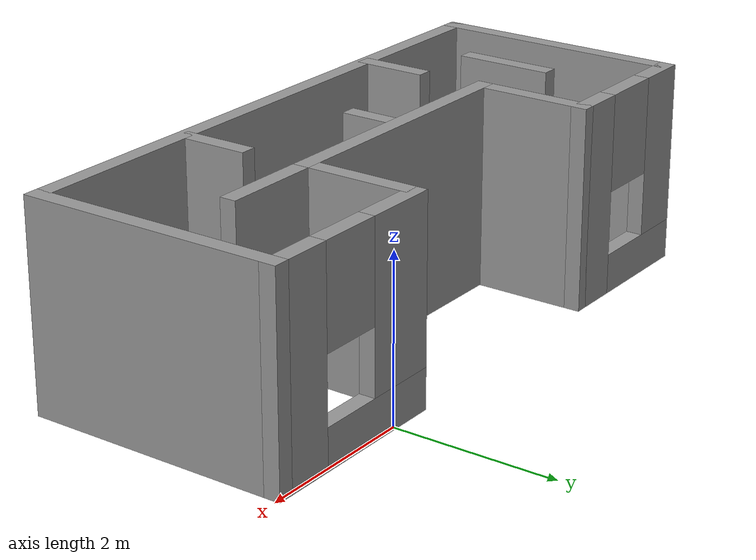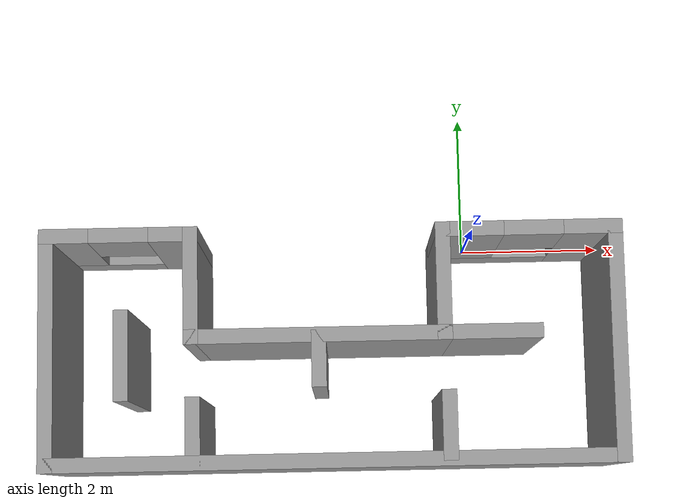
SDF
<?xml version='1.0'?>
<sdf version='1.4'>
  <model name='maze1'>
    <link name='Wall_10'>
      <collision name='Wall_10_Collision'>
        <geometry>
          <box>
            <size>3.24327 0.2 2.5</size>
          </box>
        </geometry>
        <pose>0 0 1.25 0 -0 0</pose>
      </collision>
      <visual name='Wall_10_Visual'>
        <pose>0 0 1.25 0 -0 0</pose>
        <geometry>
          <box>
            <size>3.24327 0.2 2.5</size>
          </box>
        </geometry>
        <material>
          <script>
            <uri>file://media/materials/scripts/gazebo.material</uri>
            <name>Gazebo/Grey</name>
          </script>
        </material>
      </visual>
      <velocity_decay>
        <linear>0</linear>
        <angular>0</angular>
      </velocity_decay>
      <pose>-5.73365 -1.57745 0 0 0 -1.5708</pose>
    </link>
    <link name='Wall_12'>
      <collision name='Wall_12_Collision'>
        <geometry>
          <box>
            <size>0.759682 0.2 2.5</size>
          </box>
        </geometry>
        <pose>0 0 1.25 0 -0 0</pose>
      </collision>
      <visual name='Wall_12_Visual'>
        <pose>0 0 1.25 0 -0 0</pose>
        <geometry>
          <box>
            <size>0.759682 0.2 2.5</size>
          </box>
        </geometry>
        <material>
          <script>
            <uri>file://media/materials/scripts/gazebo.material</uri>
            <name>Gazebo/Grey</name>
          </script>
        </material>
      </visual>
      <velocity_decay>
        <linear>0</linear>
        <angular>0</angular>
      </velocity_decay>
      <pose>-2.1132 -1.75235 0 0 0 -1.5708</pose>
    </link>
    <link name='Wall_14'>
      <collision name='Wall_14_Collision'>
        <geometry>
          <box>
            <size>0.917093 0.2 2.5</size>
          </box>
        </geometry>
        <pose>0 0 1.25 0 -0 0</pose>
      </collision>
      <visual name='Wall_14_Visual'>
        <pose>0 0 1.25 0 -0 0</pose>
        <geometry>
          <box>
            <size>0.917093 0.2 2.5</size>
          </box>
        </geometry>
        <material>
          <script>
            <uri>file://media/materials/scripts/gazebo.material</uri>
            <name>Gazebo/Grey</name>
          </script>
        </material>
      </visual>
      <velocity_decay>
        <linear>0</linear>
        <angular>0</angular>
      </velocity_decay>
      <pose>-3.79225 -2.68807 0 0 -0 1.5708</pose>
    </link>
    <link name='Wall_16'>
      <collision name='Wall_16_Collision'>
        <geometry>
          <box>
            <size>0.934583 0.2 2.5</size>
          </box>
        </geometry>
        <pose>0 0 1.25 0 -0 0</pose>
      </collision>
      <visual name='Wall_16_Visual'>
        <pose>0 0 1.25 0 -0 0</pose>
        <geometry>
          <box>
            <size>0.934583 0.2 2.5</size>
          </box>
        </geometry>
        <material>
          <script>
            <uri>file://media/materials/scripts/gazebo.material</uri>
            <name>Gazebo/Grey</name>
          </script>
        </material>
      </visual>
      <velocity_decay>
        <linear>0</linear>
        <angular>0</angular>
      </velocity_decay>
      <pose>-0.399176 -2.66183 0 0 -0 1.5708</pose>
    </link>
    <link name='Wall_18'>
      <collision name='Wall_18_Collision'>
        <geometry>
          <box>
            <size>1.40681 0.2 2.5</size>
          </box>
        </geometry>
        <pose>0 0 1.25 0 -0 0</pose>
      </collision>
      <visual name='Wall_18_Visual'>
        <pose>0 0 1.25 0 -0 0</pose>
        <geometry>
          <box>
            <size>1.40681 0.2 2.5</size>
          </box>
        </geometry>
        <material>
          <script>
            <uri>file://media/materials/scripts/gazebo.material</uri>
            <name>Gazebo/Grey</name>
          </script>
        </material>
      </visual>
      <velocity_decay>
        <linear>0</linear>
        <angular>0</angular>
      </velocity_decay>
      <pose>0.169251 -1.43753 0 0 -0 0</pose>
    </link>
    <link name='Wall_20'>
      <collision name='Wall_20_Collision'>
        <geometry>
          <box>
            <size>1.21442 0.2 2.5</size>
          </box>
        </geometry>
        <pose>0 0 1.25 0 -0 0</pose>
      </collision>
      <visual name='Wall_20_Visual'>
        <pose>0 0 1.25 0 -0 0</pose>
        <geometry>
          <box>
            <size>1.21442 0.2 2.5</size>
          </box>
        </geometry>
        <material>
          <script>
            <uri>file://media/materials/scripts/gazebo.material</uri>
            <name>Gazebo/Grey</name>
          </script>
        </material>
      </visual>
      <velocity_decay>
        <linear>0</linear>
        <angular>0</angular>
      </velocity_decay>
      <pose>-4.73671 -1.6649 0 0 0 -1.5708</pose>
    </link>
    <link name='Wall_3'>
      <collision name='Wall_3_Collision'>
        <geometry>
          <box>
            <size>7.80818 0.2 2.5</size>
          </box>
        </geometry>
        <pose>0 0 1.25 0 -0 0</pose>
      </collision>
      <visual name='Wall_3_Visual'>
        <pose>0 0 1.25 0 -0 0</pose>
        <geometry>
          <box>
            <size>7.80818 0.2 2.5</size>
          </box>
        </geometry>
        <material>
          <script>
            <uri>file://media/materials/scripts/gazebo.material</uri>
            <name>Gazebo/Grey</name>
          </script>
        </material>
      </visual>
      <velocity_decay>
        <linear>0</linear>
        <angular>0</angular>
      </velocity_decay>
      <pose>-1.92956 -3.09909 0 0 -0 0</pose>
    </link>
    <link name='Wall_4'>
      <collision name='Wall_4_Collision'>
        <geometry>
          <box>
            <size>3.24327 0.2 2.5</size>
          </box>
        </geometry>
        <pose>0 0 1.25 0 -0 0</pose>
      </collision>
      <visual name='Wall_4_Visual'>
        <pose>0 0 1.25 0 -0 0</pose>
        <geometry>
          <box>
            <size>3.24327 0.2 2.5</size>
          </box>
        </geometry>
        <material>
          <script>
            <uri>file://media/materials/scripts/gazebo.material</uri>
            <name>Gazebo/Grey</name>
          </script>
        </material>
      </visual>
      <velocity_decay>
        <linear>0</linear>
        <angular>0</angular>
      </velocity_decay>
      <pose>1.87453 -1.57745 0 0 -0 1.5708</pose>
    </link>
    <link name='Wall_5'>
      <pose>0.720188 -0.055814 0 0 -0 3.14159</pose>
      <visual name='Wall_5_Visual_0'>
        <pose>-0.862152 0 1.25 0 -0 0</pose>
        <geometry>
          <box>
            <size>0.784384 0.2 2.5</size>
          </box>
        </geometry>
        <material>
          <script>
            <uri>file://media/materials/scripts/gazebo.material</uri>
            <name>Gazebo/Grey</name>
          </script>
        </material>
      </visual>
      <collision name='Wall_5_Collision_0'>
        <geometry>
          <box>
            <size>0.784384 0.2 2.5</size>
          </box>
        </geometry>
        <pose>-0.862152 0 1.25 0 -0 0</pose>
      </collision>
      <visual name='Wall_5_Visual_1'>
        <pose>0.392192 0 0.25 0 -0 0</pose>
        <geometry>
          <box>
            <size>1.7243 0.2 0.5</size>
          </box>
        </geometry>
        <material>
          <script>
            <uri>file://media/materials/scripts/gazebo.material</uri>
            <name>Gazebo/Grey</name>
          </script>
        </material>
      </visual>
      <collision name='Wall_5_Collision_1'>
        <geometry>
          <box>
            <size>1.7243 0.2 0.5</size>
          </box>
        </geometry>
        <pose>0.392192 0 0.25 0 -0 0</pose>
      </collision>
      <visual name='Wall_5_Visual_2'>
        <pose>0.792192 0 1.5 0 -0 0</pose>
        <geometry>
          <box>
            <size>0.924304 0.2 2</size>
          </box>
        </geometry>
        <material>
          <script>
            <uri>file://media/materials/scripts/gazebo.material</uri>
            <name>Gazebo/Grey</name>
          </script>
        </material>
      </visual>
      <collision name='Wall_5_Collision_2'>
        <geometry>
          <box>
            <size>0.924304 0.2 2</size>
          </box>
        </geometry>
        <pose>0.792192 0 1.5 0 -0 0</pose>
      </collision>
      <visual name='Wall_5_Visual_3'>
        <pose>-0.06996 0 1.9 0 -0 0</pose>
        <geometry>
          <box>
            <size>0.8 0.2 1.2</size>
          </box>
        </geometry>
        <material>
          <script>
            <uri>file://media/materials/scripts/gazebo.material</uri>
            <name>Gazebo/Grey</name>
          </script>
        </material>
      </visual>
      <collision name='Wall_5_Collision_3'>
        <geometry>
          <box>
            <size>0.8 0.2 1.2</size>
          </box>
        </geometry>
        <pose>-0.06996 0 1.9 0 -0 0</pose>
      </collision>
    </link>
    <link name='Wall_6'>
      <collision name='Wall_6_Collision'>
        <geometry>
          <box>
            <size>1.58171 0.2 2.5</size>
          </box>
        </geometry>
        <pose>0 0 1.25 0 -0 0</pose>
      </collision>
      <visual name='Wall_6_Visual'>
        <pose>0 0 1.25 0 -0 0</pose>
        <geometry>
          <box>
            <size>1.58171 0.2 2.5</size>
          </box>
        </geometry>
        <material>
          <script>
            <uri>file://media/materials/scripts/gazebo.material</uri>
            <name>Gazebo/Grey</name>
          </script>
        </material>
      </visual>
      <velocity_decay>
        <linear>0</linear>
        <angular>0</angular>
      </velocity_decay>
      <pose>-0.434157 -0.746671 0 0 0 -1.5708</pose>
    </link>
    <link name='Wall_7'>
      <collision name='Wall_7_Collision'>
        <geometry>
          <box>
            <size>3.57558 0.2 2.5</size>
          </box>
        </geometry>
        <pose>0 0 1.25 0 -0 0</pose>
      </collision>
      <visual name='Wall_7_Visual'>
        <pose>0 0 1.25 0 -0 0</pose>
        <geometry>
          <box>
            <size>3.57558 0.2 2.5</size>
          </box>
        </geometry>
        <material>
          <script>
            <uri>file://media/materials/scripts/gazebo.material</uri>
            <name>Gazebo/Grey</name>
          </script>
        </material>
      </visual>
      <velocity_decay>
        <linear>0</linear>
        <angular>0</angular>
      </velocity_decay>
      <pose>-2.12195 -1.43753 0 0 -0 3.14159</pose>
    </link>
    <link name='Wall_8'>
      <collision name='Wall_8_Collision'>
        <geometry>
          <box>
            <size>1.58171 0.2 2.5</size>
          </box>
        </geometry>
        <pose>0 0 1.25 0 -0 0</pose>
      </collision>
      <visual name='Wall_8_Visual'>
        <pose>0 0 1.25 0 -0 0</pose>
        <geometry>
          <box>
            <size>1.58171 0.2 2.5</size>
          </box>
        </geometry>
        <material>
          <script>
            <uri>file://media/materials/scripts/gazebo.material</uri>
            <name>Gazebo/Grey</name>
          </script>
        </material>
      </visual>
      <velocity_decay>
        <linear>0</linear>
        <angular>0</angular>
      </velocity_decay>
      <pose>-3.80974 -0.746671 0 0 -0 1.5708</pose>
    </link>
    <link name='Wall_9'>
      <pose>-4.77169 -0.055814 0 0 -0 3.14159</pose>
      <visual name='Wall_9_Visual_0'>
        <pose>-0.730977 0 1.25 0 -0 0</pose>
        <geometry>
          <box>
            <size>0.661953 0.2 2.5</size>
          </box>
        </geometry>
        <material>
          <script>
            <uri>file://media/materials/scripts/gazebo.material</uri>
            <name>Gazebo/Grey</name>
          </script>
        </material>
      </visual>
      <collision name='Wall_9_Collision_0'>
        <geometry>
          <box>
            <size>0.661953 0.2 2.5</size>
          </box>
        </geometry>
        <pose>-0.730977 0 1.25 0 -0 0</pose>
      </collision>
      <visual name='Wall_9_Visual_1'>
        <pose>0.330977 0 0.25 0 -0 0</pose>
        <geometry>
          <box>
            <size>1.46195 0.2 0.5</size>
          </box>
        </geometry>
        <material>
          <script>
            <uri>file://media/materials/scripts/gazebo.material</uri>
            <name>Gazebo/Grey</name>
          </script>
        </material>
      </visual>
      <collision name='Wall_9_Collision_1'>
        <geometry>
          <box>
            <size>1.46195 0.2 0.5</size>
          </box>
        </geometry>
        <pose>0.330977 0 0.25 0 -0 0</pose>
      </collision>
      <visual name='Wall_9_Visual_2'>
        <pose>0.730977 0 1.5 0 -0 0</pose>
        <geometry>
          <box>
            <size>0.661953 0.2 2</size>
          </box>
        </geometry>
        <material>
          <script>
            <uri>file://media/materials/scripts/gazebo.material</uri>
            <name>Gazebo/Grey</name>
          </script>
        </material>
      </visual>
      <collision name='Wall_9_Collision_2'>
        <geometry>
          <box>
            <size>0.661953 0.2 2</size>
          </box>
        </geometry>
        <pose>0.730977 0 1.5 0 -0 0</pose>
      </collision>
      <visual name='Wall_9_Visual_3'>
        <pose>0 0 1.9 0 -0 0</pose>
        <geometry>
          <box>
            <size>0.8 0.2 1.2</size>
          </box>
        </geometry>
        <material>
          <script>
            <uri>file://media/materials/scripts/gazebo.material</uri>
            <name>Gazebo/Grey</name>
          </script>
        </material>
      </visual>
      <collision name='Wall_9_Collision_3'>
        <geometry>
          <box>
            <size>0.8 0.2 1.2</size>
          </box>
        </geometry>
        <pose>0 0 1.9 0 -0 0</pose>
      </collision>
    </link>
    <static>1</static>
  </model>
</sdf>
